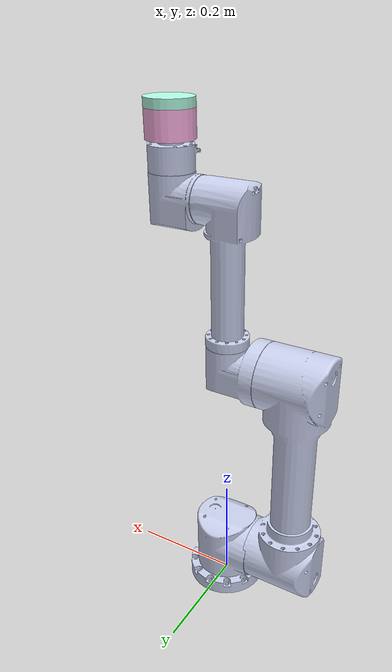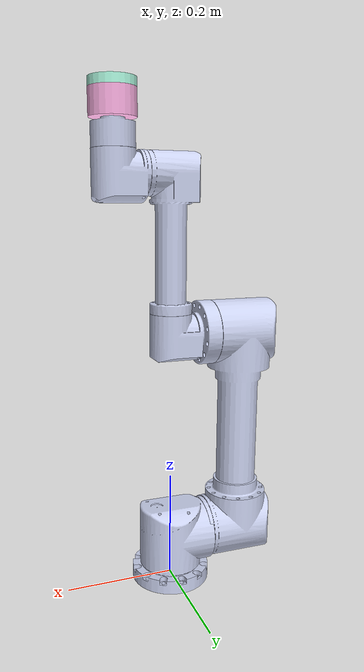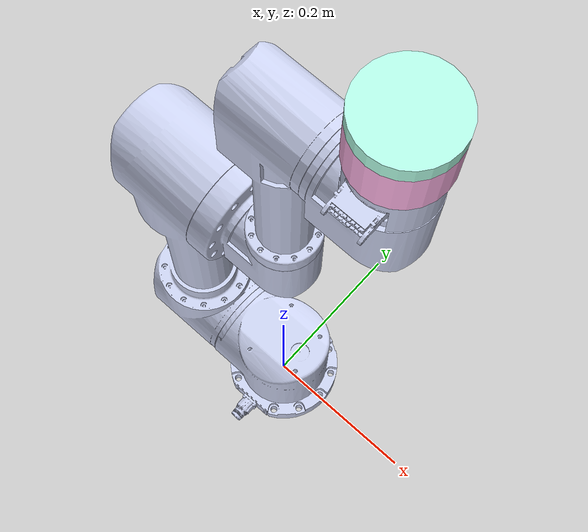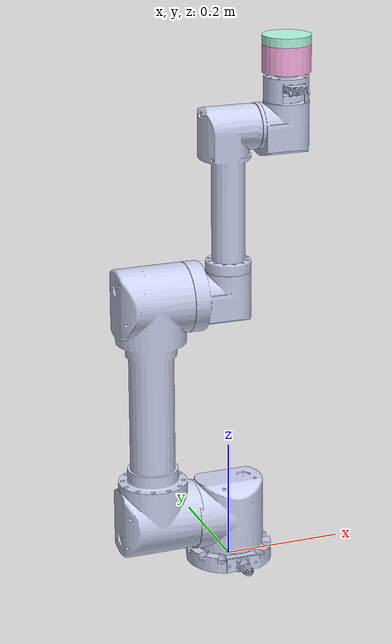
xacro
<?xml version="1.0"?>
<robot xmlns:xacro="http://ros.org/wiki/xacro" name="fsrobo_r">
  <!-- fsrobo_r -->
  <xacro:include filename="$(find fsrobo_r_description)/urdf/fsrobo_r.urdf.xacro" />

  <!-- arm -->
  <xacro:fsrobo_r_robot prefix=""/>

  <link name="world" />

  <!-- force torque sensor -->
  <link name="sensor">
    <inertial>
      <origin xyz="0 0 0" rpy="0 0 0" />
      <mass value="0.5" />
  		<inertia ixx="1" ixy="0" ixz="0" iyy="1" iyz="0" izz="1" />
    </inertial>
    <visual>
      <origin xyz="0 0 0" rpy="0 0 0" />
      <geometry>
        <cylinder radius="0.04" length="0.045" />
      </geometry>
      <material name="">
        <color rgba="1 0.7 0.9 1" />
      </material>
    </visual>
  </link>
  <joint name="link6_sensor" type="fixed">
    <origin xyz="0 0 0.0225" rpy="0 0 0" />
    <parent link="Link6" />
    <child link="sensor" />
  </joint>

  <link name="tool_adapter">
    <inertial>
      <origin xyz="0 0 0" rpy="0 0 0" />
      <mass value="0.05" />
  		<inertia ixx="1" ixy="0" ixz="0" iyy="1" iyz="0" izz="1" />
    </inertial>
    <visual>
      <origin xyz="0 0 0" rpy="0 0 0" />
      <geometry>
        <cylinder radius="0.04" length="0.015" />
      </geometry>
      <material name="">
        <color rgba="0.7 1 0.9 1" />
      </material>
    </visual>
  </link>
  <joint name="sensor_hand_adapter" type="fixed">
    <origin xyz="0 0 0.03" rpy="0 0 0" />
    <parent link="sensor" />
    <child link="tool_adapter" />
  </joint>

  <joint name="world_joint" type="fixed">
    <parent link="world" />
    <child link = "base_link" />
    <origin xyz="0.0 0.0 0.0" rpy="0.0 0.0 0.0" />
  </joint>
</robot>

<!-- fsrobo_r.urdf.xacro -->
<robot xmlns:xacro="http://ros.org/wiki/xacro">

  <xacro:macro name="fsrobo_r_robot" params="prefix">
    <link
      name="${prefix}base_link">
      <inertial>
        <origin
          xyz="6.20129635789006E-06 0.00135671010372665 0.00692741827175326"
          rpy="0 0 0" />
        <mass
          value="0.224918104064038" />
        <inertia
          ixx="0.000389773121010351"
          ixy="5.34979023842647E-08"
          ixz="2.00299715681034E-09"
          iyy="0.000393784206533644"
          iyz="1.8618345474573E-06"
          izz="0.000763322543979528" />
      </inertial>
      <visual>
        <origin
          xyz="0 0 0"
          rpy="0 0 0" />
        <geometry>
          <mesh
            filename="package://fsrobo_r_description/meshes/base_link.STL" />
        </geometry>
        <material
          name="">
          <color
            rgba="0.792156862745098 0.819607843137255 0.933333333333333 1" />
        </material>
      </visual>
      <collision>
        <origin
          xyz="0 0 0"
          rpy="0 0 0" />
        <geometry>
          <mesh
            filename="package://fsrobo_r_description/meshes/base_link.STL" />
        </geometry>
      </collision>
    </link>
    <link
      name="${prefix}Link1">
      <inertial>
        <origin
          xyz="-0.00449037408423813 5.42440907528791E-06 0.0715874027691071"
          rpy="0 0 0" />
        <mass
          value="1.1964979585014" />
        <inertia
          ixx="0.00235325407469509"
          ixy="-1.48424194830244E-07"
          ixz="0.00016645431594179"
          iyy="0.00238080305757056"
          iyz="-3.71645517568927E-07"
          izz="0.00214862307498412" />
      </inertial>
      <visual>
        <origin
          xyz="0 0 0"
          rpy="0 0 0" />
        <geometry>
          <mesh
            filename="package://fsrobo_r_description/meshes/Link1.STL" />
        </geometry>
        <material
          name="">
          <color
            rgba="0.792156862745098 0.819607843137255 0.933333333333333 1" />
        </material>
      </visual>
      <collision>
        <origin
          xyz="0 0 0"
          rpy="0 0 0" />
        <geometry>
          <mesh
            filename="package://fsrobo_r_description/meshes/Link1.STL" />
        </geometry>
      </collision>
    </link>
    <joint
      name="${prefix}Joint1"
      type="revolute">
      <origin
        xyz="0 0 0"
        rpy="0 0 0" />
      <parent
        link="${prefix}base_link" />
      <child
        link="${prefix}Link1" />
      <axis
        xyz="0 0 1" />
      <limit
        lower="-4.1888"
        upper="4.1888"
        effort="0"
        velocity="3.11049" />
    </joint>
    <link
      name="${prefix}Link2">
      <inertial>
        <origin
          xyz="-0.126463562505262 -3.03757464646919E-14 0.189799410965193"
          rpy="0 0 0" />
        <mass
          value="3.71491032829736" />
        <inertia
          ixx="0.0996449226656911"
          ixy="-4.07081213433656E-15"
          ixz="0.000531355089159735"
          iyy="0.100320218055197"
          iyz="-2.73732399977317E-06"
          izz="0.00607078426291308" />
      </inertial>
      <visual>
        <origin
          xyz="0 0 0"
          rpy="0 0 0" />
        <geometry>
          <mesh
            filename="package://fsrobo_r_description/meshes/Link2.STL" />
        </geometry>
        <material
          name="">
          <color
            rgba="0.792156862745098 0.819607843137255 0.933333333333333 1" />
        </material>
      </visual>
      <collision>
        <origin
          xyz="0 0 0"
          rpy="0 0 0" />
        <geometry>
          <mesh
            filename="package://fsrobo_r_description/meshes/Link2.STL" />
        </geometry>
      </collision>
    </link>
    <joint
      name="${prefix}Joint2"
      type="revolute">
      <origin
        xyz="0 0 0.0875"
        rpy="0 0 0" />
      <parent
        link="${prefix}Link1" />
      <child
        link="${prefix}Link2" />
      <axis
        xyz="1 0 0" />
      <limit
        lower="-4.1888"
        upper="4.1888"
        effort="0"
        velocity="3.11049" />
    </joint>
    <link
      name="${prefix}Link3">
      <inertial>
        <origin
          xyz="-0.0181715886077434 -8.39942636869206E-06 0.00361736607529833"
          rpy="0 0 0" />
        <mass
          value="0.503493344111679" />
        <inertia
          ixx="0.000606835380422718"
          ixy="2.96258447607099E-07"
          ixz="-6.8421095589689E-05"
          iyy="0.000746558385545657"
          iyz="-2.34699770879584E-08"
          izz="0.000681452998524084" />
      </inertial>
      <visual>
        <origin
          xyz="0 0 0"
          rpy="0 0 0" />
        <geometry>
          <mesh
            filename="package://fsrobo_r_description/meshes/Link3.STL" />
        </geometry>
        <material
          name="">
          <color
            rgba="0.792156862745098 0.819607843137255 0.933333333333333 1" />
        </material>
      </visual>
      <collision>
        <origin
          xyz="0 0 0"
          rpy="0 0 0" />
        <geometry>
          <mesh
            filename="package://fsrobo_r_description/meshes/Link3.STL" />
        </geometry>
      </collision>
    </link>
    <joint
      name="${prefix}Joint3"
      type="revolute">
      <origin
        xyz="0 0 0.385"
        rpy="0 0 0" />
      <parent
        link="${prefix}Link2" />
      <child
        link="${prefix}Link3" />
      <axis
        xyz="1 0 0" />
      <limit
        lower="-4.1888"
        upper="4.1888"
        effort="0"
        velocity="3.11049" />
    </joint>
    <link
      name="${prefix}Link4">
      <inertial>
        <origin
          xyz="0.00290243681192058 4.92118154597773E-06 -0.0738374738187304"
          rpy="0 0 0" />
        <mass
          value="0.835817436377135" />
        <inertia
          ixx="0.0051838603413169"
          ixy="4.30855334856876E-08"
          ixz="-0.000214303665531665"
          iyy="0.00526559628549006"
          iyz="-4.86165136068341E-07"
          izz="0.000590028561985229" />
      </inertial>
      <visual>
        <origin
          xyz="0 0 0"
          rpy="0 0 0" />
        <geometry>
          <mesh
            filename="package://fsrobo_r_description/meshes/Link4.STL" />
        </geometry>
        <material
          name="">
          <color
            rgba="0.792156862745098 0.819607843137255 0.933333333333333 1" />
        </material>
      </visual>
      <collision>
        <origin
          xyz="0 0 0"
          rpy="0 0 0" />
        <geometry>
          <mesh
            filename="package://fsrobo_r_description/meshes/Link4.STL" />
        </geometry>
      </collision>
    </link>
    <joint
      name="${prefix}Joint4"
      type="revolute">
      <origin
        xyz="0 0 0.275"
        rpy="0 0 0" />
      <parent
        link="${prefix}Link3" />
      <child
        link="${prefix}Link4" />
      <axis
        xyz="0 0 1" />
      <limit
        lower="-4.1888"
        upper="4.1888"
        effort="0"
        velocity="3.11049" />
    </joint>
    <link
      name="${prefix}Link5">
      <inertial>
        <origin
          xyz="-0.00762763949469519 -1.06459091140225E-05 0.00458167547641364"
          rpy="0 0 0" />
        <mass
          value="0.397519557815901" />
        <inertia
          ixx="0.00038454224185"
          ixy="2.51938979759281E-07"
          ixz="-4.92173834393031E-05"
          iyy="0.000421678593966681"
          iyz="-2.77663008675825E-08"
          izz="0.000358331267792745" />
      </inertial>
      <visual>
        <origin
          xyz="0 0 0"
          rpy="0 0 0" />
        <geometry>
          <mesh
            filename="package://fsrobo_r_description/meshes/Link5.STL" />
        </geometry>
        <material
          name="">
          <color
            rgba="0.792156862745098 0.819607843137255 0.933333333333333 1" />
        </material>
      </visual>
      <collision>
        <origin
          xyz="0 0 0"
          rpy="0 0 0" />
        <geometry>
          <mesh
            filename="package://fsrobo_r_description/meshes/Link5.STL" />
        </geometry>
      </collision>
    </link>
    <joint
      name="${prefix}Joint5"
      type="revolute">
      <origin
        xyz="0.100 0 0"
        rpy="0 0 0" />
      <parent
        link="${prefix}Link4" />
      <child
        link="${prefix}Link5" />
      <axis
        xyz="1 0 0" />
      <limit
        lower="-4.1888"
        upper="4.1888"
        effort="0"
        velocity="3.11049" />
    </joint>
    <link
      name="${prefix}Link6">
      <inertial>
        <origin
          xyz="0.001824741161344 -1.2714577393637E-05 -0.0183104466551915"
          rpy="0 0 0" />
        <mass
          value="0.0659925254230773" />
        <inertia
          ixx="3.46638767440248E-05"
          ixy="-3.0599679783686E-08"
          ixz="-5.91110846528508E-07"
          iyy="4.40852639111946E-05"
          iyz="4.19435440614541E-09"
          izz="6.53486052794694E-05" />
      </inertial>
      <visual>
        <origin
          xyz="0 0 0"
          rpy="0 0 0" />
        <geometry>
          <mesh
            filename="package://fsrobo_r_description/meshes/Link6.STL" />
        </geometry>
        <material
          name="">
          <color
            rgba="0.792156862745098 0.819607843137255 0.933333333333333 1" />
        </material>
      </visual>
      <collision>
        <origin
          xyz="0 0 0"
          rpy="0 0 0" />
        <geometry>
          <mesh
            filename="package://fsrobo_r_description/meshes/Link6.STL" />
        </geometry>
      </collision>
    </link>
    <joint
      name="${prefix}Joint6"
      type="revolute">
      <origin
        xyz="0 0 0.085"
        rpy="0 0 -1.5707" />
      <parent
        link="${prefix}Link5" />
      <child
        link="${prefix}Link6" />
      <axis
        xyz="0 0 1" />
      <limit
        lower="-6.2832"
        upper="6.2832"
        effort="0"
        velocity="3.11049" />
    </joint>
  </xacro:macro>
</robot>
